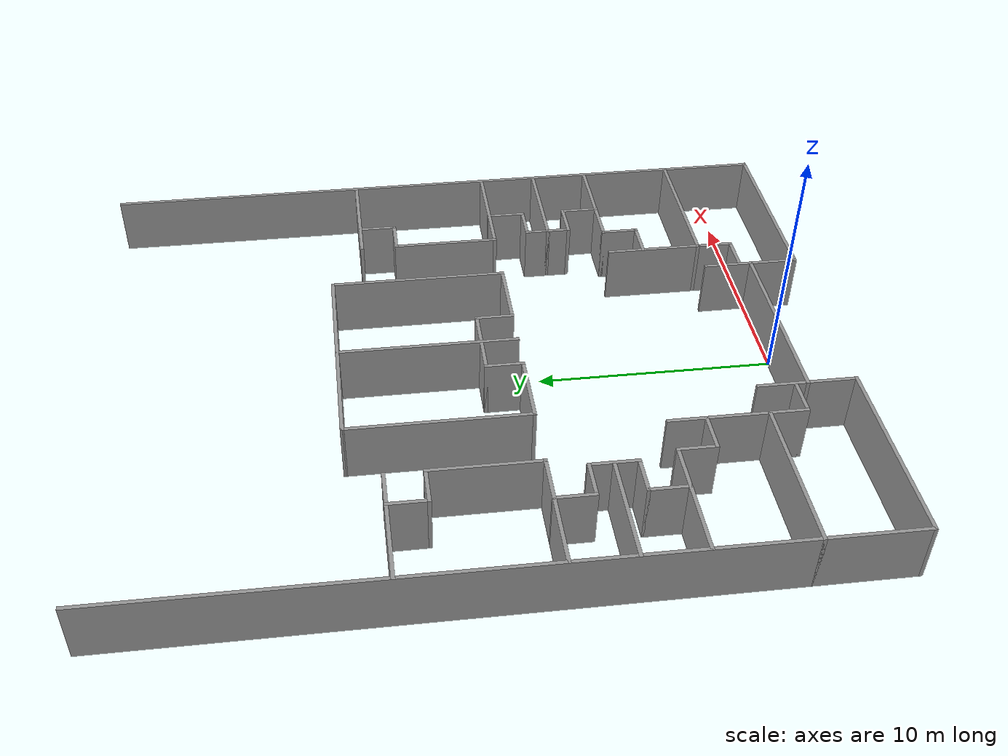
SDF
<sdf version="1.6">
 <model name="hospital__restricted_model">
  <pose>0.015862 19 0 0 -0 0</pose>
  <link name="Wall_0">
   <collision name="Wall_0_Collision">
    <geometry><box><size>4.15 0.15 2.5</size></box></geometry>
    <pose>0 0 1.25 0 -0 0</pose>
   </collision>
   <visual name="Wall_0_Visual">
    <pose>0 0 1.25 0 -0 0</pose>
    <geometry><box><size>4.15 0.15 2.5</size></box></geometry>
    <material>
     <script><uri>file://media/materials/scripts/gazebo.material</uri><name>Gazebo/Grey</name></script>
     <ambient>1 1 1 1</ambient>
    </material>
    <meta><layer>0</layer></meta>
   </visual>
   <pose>-4.01586 -19 0 0 -0 -1.5708</pose>
  </link>
  <link name="Wall_10">
   <collision name="Wall_10_Collision">
    <geometry><box><size>6.6 0.15 2.5</size></box></geometry>
    <pose>0 0 1.25 0 -0 0</pose>
   </collision>
   <visual name="Wall_10_Visual">
    <pose>0 0 1.25 0 -0 0</pose>
    <geometry><box><size>6.6 0.15 2.5</size></box></geometry>
    <material>
     <script><uri>file://media/materials/scripts/gazebo.material</uri><name>Gazebo/Grey</name></script>
     <ambient>1 1 1 1</ambient>
    </material>
    <meta><layer>0</layer></meta>
   </visual>
   <pose>-8.79086 -17 0 0 -0 3.14159</pose>
  </link>
  <link name="Wall_102">
   <collision name="Wall_102_Collision">
    <geometry><box><size>3.15 0.15 2.5</size></box></geometry>
    <pose>0 0 1.25 0 -0 0</pose>
   </collision>
   <visual name="Wall_102_Visual">
    <pose>0 0 1.25 0 -0 0</pose>
    <geometry><box><size>3.15 0.15 2.5</size></box></geometry>
    <material>
     <script><uri>file://media/materials/scripts/gazebo.material</uri><name>Gazebo/Grey</name></script>
     <ambient>1 1 1 1</ambient>
    </material>
    <meta><layer>0</layer></meta>
   </visual>
   <pose>-3.06586 -8 0 0 -0 0</pose>
  </link>
  <link name="Wall_104">
   <collision name="Wall_104_Collision">
    <geometry><box><size>3.15 0.15 2.5</size></box></geometry>
    <pose>0 0 1.25 0 -0 0</pose>
   </collision>
   <visual name="Wall_104_Visual">
    <pose>0 0 1.25 0 -0 0</pose>
    <geometry><box><size>3.15 0.15 2.5</size></box></geometry>
    <material>
     <script><uri>file://media/materials/scripts/gazebo.material</uri><name>Gazebo/Grey</name></script>
     <ambient>1 1 1 1</ambient>
    </material>
    <meta><layer>0</layer></meta>
   </visual>
   <pose>3.03414 -8 0 0 -0 0</pose>
  </link>
  <link name="Wall_106">
   <collision name="Wall_106_Collision">
    <geometry><box><size>7.55 0.15 2.5</size></box></geometry>
    <pose>0 0 1.25 0 -0 0</pose>
   </collision>
   <visual name="Wall_106_Visual">
    <pose>0 0 1.25 0 -0 0</pose>
    <geometry><box><size>7.55 0.15 2.5</size></box></geometry>
    <material>
     <script><uri>file://media/materials/scripts/gazebo.material</uri><name>Gazebo/Grey</name></script>
     <ambient>1 1 1 1</ambient>
    </material>
    <meta><layer>0</layer></meta>
   </visual>
   <pose>-4.56386 -4.3 0 0 -0 1.57134</pose>
  </link>
  <link name="Wall_108">
   <collision name="Wall_108_Collision">
    <geometry><box><size>9.25 0.15 2.5</size></box></geometry>
    <pose>0 0 1.25 0 -0 0</pose>
   </collision>
   <visual name="Wall_108_Visual">
    <pose>0 0 1.25 0 -0 0</pose>
    <geometry><box><size>9.25 0.15 2.5</size></box></geometry>
    <material>
     <script><uri>file://media/materials/scripts/gazebo.material</uri><name>Gazebo/Grey</name></script>
     <ambient>1 1 1 1</ambient>
    </material>
    <meta><layer>0</layer></meta>
   </visual>
   <pose>-0.015862 -0.6 0 0 -0 0</pose>
  </link>
  <link name="Wall_12">
   <collision name="Wall_12_Collision">
    <geometry><box><size>4.15 0.15 2.5</size></box></geometry>
    <pose>0 0 1.25 0 -0 0</pose>
   </collision>
   <visual name="Wall_12_Visual">
    <pose>0 0 1.25 0 -0 0</pose>
    <geometry><box><size>4.15 0.15 2.5</size></box></geometry>
    <material>
     <script><uri>file://media/materials/scripts/gazebo.material</uri><name>Gazebo/Grey</name></script>
     <ambient>1 1 1 1</ambient>
    </material>
    <meta><layer>0</layer></meta>
   </visual>
   <pose>-5.56586 -15 0 0 -0 1.5708</pose>
  </link>
  <link name="Wall_121">
   <collision name="Wall_121_Collision">
    <geometry><box><size>7.55 0.15 2.5</size></box></geometry>
    <pose>0 0 1.25 0 -0 0</pose>
   </collision>
   <visual name="Wall_121_Visual">
    <pose>0 0 1.25 0 -0 0</pose>
    <geometry><box><size>7.55 0.15 2.5</size></box></geometry>
    <material>
     <script><uri>file://media/materials/scripts/gazebo.material</uri><name>Gazebo/Grey</name></script>
     <ambient>1 1 1 1</ambient>
    </material>
    <meta><layer>0</layer></meta>
   </visual>
   <pose>4.53414 -4.3 0 0 -0 -1.5708</pose>
  </link>
  <link name="Wall_123">
   <collision name="Wall_123_Collision">
    <geometry><box><size>7.55 0.15 2.5</size></box></geometry>
    <pose>0 0 1.25 0 -0 0</pose>
   </collision>
   <visual name="Wall_123_Visual">
    <pose>0 0 1.25 0 -0 0</pose>
    <geometry><box><size>7.55 0.15 2.5</size></box></geometry>
    <material>
     <script><uri>file://media/materials/scripts/gazebo.material</uri><name>Gazebo/Grey</name></script>
     <ambient>1 1 1 1</ambient>
    </material>
    <meta><layer>0</layer></meta>
   </visual>
   <pose>-0.015862 -4.3 0 0 -0 -1.5708</pose>
  </link>
  <link name="Wall_125">
   <collision name="Wall_125_Collision">
    <geometry><box><size>1.65 0.15 2.5</size></box></geometry>
    <pose>0 0 1.25 0 -0 0</pose>
   </collision>
   <visual name="Wall_125_Visual">
    <pose>0 0 1.25 0 -0 0</pose>
    <geometry><box><size>1.65 0.15 2.5</size></box></geometry>
    <material>
     <script><uri>file://media/materials/scripts/gazebo.material</uri><name>Gazebo/Grey</name></script>
     <ambient>1 1 1 1</ambient>
    </material>
    <meta><layer>0</layer></meta>
   </visual>
   <pose>-5.56586 -17.75 0 0 -0 -1.5708</pose>
  </link>
  <link name="Wall_127">
   <collision name="Wall_127_Collision">
    <geometry><box><size>1.7 0.15 2.5</size></box></geometry>
    <pose>0 0 1.25 0 -0 0</pose>
   </collision>
   <visual name="Wall_127_Visual">
    <pose>0 0 1.25 0 -0 0</pose>
    <geometry><box><size>1.7 0.15 2.5</size></box></geometry>
    <material>
     <script><uri>file://media/materials/scripts/gazebo.material</uri><name>Gazebo/Grey</name></script>
     <ambient>1 1 1 1</ambient>
    </material>
    <meta><layer>0</layer></meta>
   </visual>
   <pose>-4.79086 -18.5 0 0 -0 0</pose>
  </link>
  <link name="Wall_129">
   <collision name="Wall_129_Collision">
    <geometry><box><size>1.65 0.15 2.5</size></box></geometry>
    <pose>0 0 1.25 0 -0 0</pose>
   </collision>
   <visual name="Wall_129_Visual">
    <pose>0 0 1.25 0 -0 0</pose>
    <geometry><box><size>1.65 0.15 2.5</size></box></geometry>
    <material>
     <script><uri>file://media/materials/scripts/gazebo.material</uri><name>Gazebo/Grey</name></script>
     <ambient>1 1 1 1</ambient>
    </material>
    <meta><layer>0</layer></meta>
   </visual>
   <pose>5.53414 -17.75 0 0 -0 -1.5708</pose>
  </link>
  <link name="Wall_131">
   <collision name="Wall_131_Collision">
    <geometry><box><size>1.7 0.15 2.5</size></box></geometry>
    <pose>0 0 1.25 0 -0 0</pose>
   </collision>
   <visual name="Wall_131_Visual">
    <pose>0 0 1.25 0 -0 0</pose>
    <geometry><box><size>1.7 0.15 2.5</size></box></geometry>
    <material>
     <script><uri>file://media/materials/scripts/gazebo.material</uri><name>Gazebo/Grey</name></script>
     <ambient>1 1 1 1</ambient>
    </material>
    <meta><layer>0</layer></meta>
   </visual>
   <pose>4.75914 -18.5 0 0 -0 3.14159</pose>
  </link>
  <link name="Wall_133">
   <collision name="Wall_133_Collision">
    <geometry><box><size>1.65 0.15 2.5</size></box></geometry>
    <pose>0 0 1.25 0 -0 0</pose>
   </collision>
   <visual name="Wall_133_Visual">
    <pose>0 0 1.25 0 -0 0</pose>
    <geometry><box><size>1.65 0.15 2.5</size></box></geometry>
    <material>
     <script><uri>file://media/materials/scripts/gazebo.material</uri><name>Gazebo/Grey</name></script>
     <ambient>1 1 1 1</ambient>
    </material>
    <meta><layer>0</layer></meta>
   </visual>
   <pose>-7.11586 -13.75 0 0 -0 -1.5708</pose>
  </link>
  <link name="Wall_135">
   <collision name="Wall_135_Collision">
    <geometry><box><size>1.7 0.15 2.5</size></box></geometry>
    <pose>0 0 1.25 0 -0 0</pose>
   </collision>
   <visual name="Wall_135_Visual">
    <pose>0 0 1.25 0 -0 0</pose>
    <geometry><box><size>1.7 0.15 2.5</size></box></geometry>
    <material>
     <script><uri>file://media/materials/scripts/gazebo.material</uri><name>Gazebo/Grey</name></script>
     <ambient>1 1 1 1</ambient>
    </material>
    <meta><layer>0</layer></meta>
   </visual>
   <pose>-6.34086 -14.5 0 0 -0 0</pose>
  </link>
  <link name="Wall_137">
   <collision name="Wall_137_Collision">
    <geometry><box><size>1.65 0.15 2.5</size></box></geometry>
    <pose>0 0 1.25 0 -0 0</pose>
   </collision>
   <visual name="Wall_137_Visual">
    <pose>0 0 1.25 0 -0 0</pose>
    <geometry><box><size>1.65 0.15 2.5</size></box></geometry>
    <material>
     <script><uri>file://media/materials/scripts/gazebo.material</uri><name>Gazebo/Grey</name></script>
     <ambient>1 1 1 1</ambient>
    </material>
    <meta><layer>0</layer></meta>
   </visual>
   <pose>7.08414 -13.75 0 0 -0 1.5708</pose>
  </link>
  <link name="Wall_139">
   <collision name="Wall_139_Collision">
    <geometry><box><size>1.7 0.15 2.5</size></box></geometry>
    <pose>0 0 1.25 0 -0 0</pose>
   </collision>
   <visual name="Wall_139_Visual">
    <pose>0 0 1.25 0 -0 0</pose>
    <geometry><box><size>1.7 0.15 2.5</size></box></geometry>
    <material>
     <script><uri>file://media/materials/scripts/gazebo.material</uri><name>Gazebo/Grey</name></script>
     <ambient>1 1 1 1</ambient>
    </material>
    <meta><layer>0</layer></meta>
   </visual>
   <pose>6.30914 -14.5 0 0 -0 3.14159</pose>
  </link>
  <link name="Wall_14">
   <collision name="Wall_14_Collision">
    <geometry><box><size>5.05 0.15 2.5</size></box></geometry>
    <pose>0 0 1.25 0 -0 0</pose>
   </collision>
   <visual name="Wall_14_Visual">
    <pose>0 0 1.25 0 -0 0</pose>
    <geometry><box><size>5.05 0.15 2.5</size></box></geometry>
    <material>
     <script><uri>file://media/materials/scripts/gazebo.material</uri><name>Gazebo/Grey</name></script>
     <ambient>1 1 1 1</ambient>
    </material>
    <meta><layer>0</layer></meta>
   </visual>
   <pose>-9.56586 -13 0 0 -0 3.14159</pose>
  </link>
  <link name="Wall_141">
   <collision name="Wall_141_Collision">
    <geometry><box><size>1.65 0.15 2.5</size></box></geometry>
    <pose>0 0 1.25 0 -0 0</pose>
   </collision>
   <visual name="Wall_141_Visual">
    <pose>0 0 1.25 0 -0 0</pose>
    <geometry><box><size>1.65 0.15 2.5</size></box></geometry>
    <material>
     <script><uri>file://media/materials/scripts/gazebo.material</uri><name>Gazebo/Grey</name></script>
     <ambient>1 1 1 1</ambient>
    </material>
    <meta><layer>0</layer></meta>
   </visual>
   <pose>-8.26586 -11.45 0 0 -0 3.14159</pose>
  </link>
  <link name="Wall_143">
   <collision name="Wall_143_Collision">
    <geometry><box><size>1.7 0.15 2.5</size></box></geometry>
    <pose>0 0 1.25 0 -0 0</pose>
   </collision>
   <visual name="Wall_143_Visual">
    <pose>0 0 1.25 0 -0 0</pose>
    <geometry><box><size>1.7 0.15 2.5</size></box></geometry>
    <material>
     <script><uri>file://media/materials/scripts/gazebo.material</uri><name>Gazebo/Grey</name></script>
     <ambient>1 1 1 1</ambient>
    </material>
    <meta><layer>0</layer></meta>
   </visual>
   <pose>-9.01586 -12.225 0 0 -0 -1.5708</pose>
  </link>
  <link name="Wall_145">
   <collision name="Wall_145_Collision">
    <geometry><box><size>1.65 0.15 2.5</size></box></geometry>
    <pose>0 0 1.25 0 -0 0</pose>
   </collision>
   <visual name="Wall_145_Visual">
    <pose>0 0 1.25 0 -0 0</pose>
    <geometry><box><size>1.65 0.15 2.5</size></box></geometry>
    <material>
     <script><uri>file://media/materials/scripts/gazebo.material</uri><name>Gazebo/Grey</name></script>
     <ambient>1 1 1 1</ambient>
    </material>
    <meta><layer>0</layer></meta>
   </visual>
   <pose>-8.26586 -9.55 0 0 -0 3.14159</pose>
  </link>
  <link name="Wall_147">
   <collision name="Wall_147_Collision">
    <geometry><box><size>1.7 0.15 2.5</size></box></geometry>
    <pose>0 0 1.25 0 -0 0</pose>
   </collision>
   <visual name="Wall_147_Visual">
    <pose>0 0 1.25 0 -0 0</pose>
    <geometry><box><size>1.7 0.15 2.5</size></box></geometry>
    <material>
     <script><uri>file://media/materials/scripts/gazebo.material</uri><name>Gazebo/Grey</name></script>
     <ambient>1 1 1 1</ambient>
    </material>
    <meta><layer>0</layer></meta>
   </visual>
   <pose>-9.01586 -8.775 0 0 -0 -1.5708</pose>
  </link>
  <link name="Wall_149">
   <collision name="Wall_149_Collision">
    <geometry><box><size>1.65 0.15 2.5</size></box></geometry>
    <pose>0 0 1.25 0 -0 0</pose>
   </collision>
   <visual name="Wall_149_Visual">
    <pose>0 0 1.25 0 -0 0</pose>
    <geometry><box><size>1.65 0.15 2.5</size></box></geometry>
    <material>
     <script><uri>file://media/materials/scripts/gazebo.material</uri><name>Gazebo/Grey</name></script>
     <ambient>1 1 1 1</ambient>
    </material>
    <meta><layer>0</layer></meta>
   </visual>
   <pose>-7.86586 -3.55 0 0 -0 0</pose>
  </link>
  <link name="Wall_151">
   <collision name="Wall_151_Collision">
    <geometry><box><size>1.7 0.15 2.5</size></box></geometry>
    <pose>0 0 1.25 0 -0 0</pose>
   </collision>
   <visual name="Wall_151_Visual">
    <pose>0 0 1.25 0 -0 0</pose>
    <geometry><box><size>1.7 0.15 2.5</size></box></geometry>
    <material>
     <script><uri>file://media/materials/scripts/gazebo.material</uri><name>Gazebo/Grey</name></script>
     <ambient>1 1 1 1</ambient>
    </material>
    <meta><layer>0</layer></meta>
   </visual>
   <pose>-8.61586 -2.775 0 0 -0 1.5708</pose>
  </link>
  <link name="Wall_17">
   <collision name="Wall_17_Collision">
    <geometry><box><size>2.05 0.15 2.5</size></box></geometry>
    <pose>0 0 1.25 0 -0 0</pose>
   </collision>
   <visual name="Wall_17_Visual">
    <pose>0 0 1.25 0 -0 0</pose>
    <geometry><box><size>2.05 0.15 2.5</size></box></geometry>
    <material>
     <script><uri>file://media/materials/scripts/gazebo.material</uri><name>Gazebo/Grey</name></script>
     <ambient>1 1 1 1</ambient>
    </material>
    <meta><layer>0</layer></meta>
   </visual>
   <pose>-7.51586 -10.5 0 0 -0 1.5708</pose>
  </link>
  <link name="Wall_19">
   <collision name="Wall_19_Collision">
    <geometry><box><size>4.65 0.15 2.5</size></box></geometry>
    <pose>0 0 1.25 0 -0 0</pose>
   </collision>
   <visual name="Wall_19_Visual">
    <pose>0 0 1.25 0 -0 0</pose>
    <geometry><box><size>4.65 0.15 2.5</size></box></geometry>
    <material>
     <script><uri>file://media/materials/scripts/gazebo.material</uri><name>Gazebo/Grey</name></script>
     <ambient>1 1 1 1</ambient>
    </material>
    <meta><layer>0</layer></meta>
   </visual>
   <pose>-9.76586 -10.5 0 0 -0 3.14159</pose>
  </link>
  <link name="Wall_2">
   <collision name="Wall_2_Collision">
    <geometry><box><size>8.15 0.15 2.5</size></box></geometry>
    <pose>0 0 1.25 0 -0 0</pose>
   </collision>
   <visual name="Wall_2_Visual">
    <pose>0 0 1.25 0 -0 0</pose>
    <geometry><box><size>8.15 0.15 2.5</size></box></geometry>
    <material>
     <script><uri>file://media/materials/scripts/gazebo.material</uri><name>Gazebo/Grey</name></script>
     <ambient>1 1 1 1</ambient>
    </material>
    <meta><layer>0</layer></meta>
   </visual>
   <pose>-0.015862 -19 0 0 -0 0</pose>
  </link>
  <link name="Wall_203">
   <collision name="Wall_203_Collision">
    <geometry><box><size>1.7 0.15 2.5</size></box></geometry>
    <pose>0 0 1.25 0 -0 0</pose>
   </collision>
   <visual name="Wall_203_Visual">
    <pose>0 0 1.25 0 -0 0</pose>
    <geometry><box><size>1.7 0.15 2.5</size></box></geometry>
    <material>
     <script><uri>file://media/materials/scripts/gazebo.material</uri><name>Gazebo/Grey</name></script>
     <ambient>1 1 1 1</ambient>
    </material>
    <meta><layer>0</layer></meta>
   </visual>
   <pose>8.58414 -2.775 0 0 -0 1.5708</pose>
  </link>
  <link name="Wall_205">
   <collision name="Wall_205_Collision">
    <geometry><box><size>1.65 0.15 2.5</size></box></geometry>
    <pose>0 0 1.25 0 -0 0</pose>
   </collision>
   <visual name="Wall_205_Visual">
    <pose>0 0 1.25 0 -0 0</pose>
    <geometry><box><size>1.65 0.15 2.5</size></box></geometry>
    <material>
     <script><uri>file://media/materials/scripts/gazebo.material</uri><name>Gazebo/Grey</name></script>
     <ambient>1 1 1 1</ambient>
    </material>
    <meta><layer>0</layer></meta>
   </visual>
   <pose>7.83414 -3.55 0 0 -0 3.14159</pose>
  </link>
  <link name="Wall_207">
   <collision name="Wall_207_Collision">
    <geometry><box><size>1.7 0.15 2.5</size></box></geometry>
    <pose>0 0 1.25 0 -0 0</pose>
   </collision>
   <visual name="Wall_207_Visual">
    <pose>0 0 1.25 0 -0 0</pose>
    <geometry><box><size>1.7 0.15 2.5</size></box></geometry>
    <material>
     <script><uri>file://media/materials/scripts/gazebo.material</uri><name>Gazebo/Grey</name></script>
     <ambient>1 1 1 1</ambient>
    </material>
    <meta><layer>0</layer></meta>
   </visual>
   <pose>8.98414 -12.225 0 0 -0 1.5708</pose>
  </link>
  <link name="Wall_209">
   <collision name="Wall_209_Collision">
    <geometry><box><size>1.65 0.15 2.5</size></box></geometry>
    <pose>0 0 1.25 0 -0 0</pose>
   </collision>
   <visual name="Wall_209_Visual">
    <pose>0 0 1.25 0 -0 0</pose>
    <geometry><box><size>1.65 0.15 2.5</size></box></geometry>
    <material>
     <script><uri>file://media/materials/scripts/gazebo.material</uri><name>Gazebo/Grey</name></script>
     <ambient>1 1 1 1</ambient>
    </material>
    <meta><layer>0</layer></meta>
   </visual>
   <pose>8.23414 -11.45 0 0 -0 3.14159</pose>
  </link>
  <link name="Wall_21">
   <collision name="Wall_21_Collision">
    <geometry><box><size>5.05 0.15 2.5</size></box></geometry>
    <pose>0 0 1.25 0 -0 0</pose>
   </collision>
   <visual name="Wall_21_Visual">
    <pose>0 0 1.25 0 -0 0</pose>
    <geometry><box><size>5.05 0.15 2.5</size></box></geometry>
    <material>
     <script><uri>file://media/materials/scripts/gazebo.material</uri><name>Gazebo/Grey</name></script>
     <ambient>1 1 1 1</ambient>
    </material>
    <meta><layer>0</layer></meta>
   </visual>
   <pose>-9.56586 -8 0 0 -0 3.14159</pose>
  </link>
  <link name="Wall_211">
   <collision name="Wall_211_Collision">
    <geometry><box><size>1.65 0.15 2.5</size></box></geometry>
    <pose>0 0 1.25 0 -0 0</pose>
   </collision>
   <visual name="Wall_211_Visual">
    <pose>0 0 1.25 0 -0 0</pose>
    <geometry><box><size>1.65 0.15 2.5</size></box></geometry>
    <material>
     <script><uri>file://media/materials/scripts/gazebo.material</uri><name>Gazebo/Grey</name></script>
     <ambient>1 1 1 1</ambient>
    </material>
    <meta><layer>0</layer></meta>
   </visual>
   <pose>8.23414 -9.55 0 0 -0 3.14159</pose>
  </link>
  <link name="Wall_213">
   <collision name="Wall_213_Collision">
    <geometry><box><size>1.7 0.15 2.5</size></box></geometry>
    <pose>0 0 1.25 0 -0 0</pose>
   </collision>
   <visual name="Wall_213_Visual">
    <pose>0 0 1.25 0 -0 0</pose>
    <geometry><box><size>1.7 0.15 2.5</size></box></geometry>
    <material>
     <script><uri>file://media/materials/scripts/gazebo.material</uri><name>Gazebo/Grey</name></script>
     <ambient>1 1 1 1</ambient>
    </material>
    <meta><layer>0</layer></meta>
   </visual>
   <pose>8.98414 -8.775 0 0 -0 -1.5708</pose>
  </link>
  <link name="Wall_215">
   <collision name="Wall_215_Collision">
    <geometry><box><size>3.25 0.15 2.5</size></box></geometry>
    <pose>0 0 1.25 0 -0 0</pose>
   </collision>
   <visual name="Wall_215_Visual">
    <pose>0 0 1.25 0 -0 0</pose>
    <geometry><box><size>3.25 0.15 2.5</size></box></geometry>
    <material>
     <script><uri>file://media/materials/scripts/gazebo.material</uri><name>Gazebo/Grey</name></script>
     <ambient>1 1 1 1</ambient>
    </material>
    <meta><layer>0</layer></meta>
   </visual>
   <pose>-0.015862 -6.5 0 0 -0 0</pose>
  </link>
  <link name="Wall_217">
   <collision name="Wall_217_Collision">
    <geometry><box><size>1.65 0.15 2.5</size></box></geometry>
    <pose>0 0 1.25 0 -0 0</pose>
   </collision>
   <visual name="Wall_217_Visual">
    <pose>0 0 1.25 0 -0 0</pose>
    <geometry><box><size>1.65 0.15 2.5</size></box></geometry>
    <material>
     <script><uri>file://media/materials/scripts/gazebo.material</uri><name>Gazebo/Grey</name></script>
     <ambient>1 1 1 1</ambient>
    </material>
    <meta><layer>0</layer></meta>
   </visual>
   <pose>-1.56586 -7.25 0 0 -0 1.5708</pose>
  </link>
  <link name="Wall_219">
   <collision name="Wall_219_Collision">
    <geometry><box><size>1.65 0.15 2.5</size></box></geometry>
    <pose>0 0 1.25 0 -0 0</pose>
   </collision>
   <visual name="Wall_219_Visual">
    <pose>0 0 1.25 0 -0 0</pose>
    <geometry><box><size>1.65 0.15 2.5</size></box></geometry>
    <material>
     <script><uri>file://media/materials/scripts/gazebo.material</uri><name>Gazebo/Grey</name></script>
     <ambient>1 1 1 1</ambient>
    </material>
    <meta><layer>0</layer></meta>
   </visual>
   <pose>1.53414 -7.25 0 0 -0 -1.5708</pose>
  </link>
  <link name="Wall_23">
   <collision name="Wall_23_Collision">
    <geometry><box><size>4.6 0.15 2.5</size></box></geometry>
    <pose>0 0 1.25 0 -0 0</pose>
   </collision>
   <visual name="Wall_23_Visual">
    <pose>0 0 1.25 0 -0 0</pose>
    <geometry><box><size>4.6 0.15 2.5</size></box></geometry>
    <material>
     <script><uri>file://media/materials/scripts/gazebo.material</uri><name>Gazebo/Grey</name></script>
     <ambient>1 1 1 1</ambient>
    </material>
    <meta><layer>0</layer></meta>
   </visual>
   <pose>-7.11586 -5.775 0 0 -0 1.5708</pose>
  </link>
  <link name="Wall_25">
   <collision name="Wall_25_Collision">
    <geometry><box><size>5.05 0.15 2.5</size></box></geometry>
    <pose>0 0 1.25 0 -0 0</pose>
   </collision>
   <visual name="Wall_25_Visual">
    <pose>0 0 1.25 0 -0 0</pose>
    <geometry><box><size>5.05 0.15 2.5</size></box></geometry>
    <material>
     <script><uri>file://media/materials/scripts/gazebo.material</uri><name>Gazebo/Grey</name></script>
     <ambient>1 1 1 1</ambient>
    </material>
    <meta><layer>0</layer></meta>
   </visual>
   <pose>-9.56586 -2 0 0 -0 3.14159</pose>
  </link>
  <link name="Wall_4">
   <collision name="Wall_4_Collision">
    <geometry><box><size>4.15 0.15 2.5</size></box></geometry>
    <pose>0 0 1.25 0 -0 0</pose>
   </collision>
   <visual name="Wall_4_Visual">
    <pose>0 0 1.25 0 -0 0</pose>
    <geometry><box><size>4.15 0.15 2.5</size></box></geometry>
    <material>
     <script><uri>file://media/materials/scripts/gazebo.material</uri><name>Gazebo/Grey</name></script>
     <ambient>1 1 1 1</ambient>
    </material>
    <meta><layer>0</layer></meta>
   </visual>
   <pose>3.98414 -19 0 0 -0 1.5708</pose>
  </link>
  <link name="Wall_58">
   <collision name="Wall_58_Collision">
    <geometry><box><size>8.15 0.15 2.5</size></box></geometry>
    <pose>0 0 1.25 0 -0 0</pose>
   </collision>
   <visual name="Wall_58_Visual">
    <pose>0 0 1.25 0 -0 0</pose>
    <geometry><box><size>8.15 0.15 2.5</size></box></geometry>
    <material>
     <script><uri>file://media/materials/scripts/gazebo.material</uri><name>Gazebo/Grey</name></script>
     <ambient>1 1 1 1</ambient>
    </material>
    <meta><layer>0</layer></meta>
   </visual>
   <pose>8.01586 -21 0 0 -0 0</pose>
  </link>
  <link name="Wall_6">
   <collision name="Wall_6_Collision">
    <geometry><box><size>8.15 0.15 2.5</size></box></geometry>
    <pose>0 0 1.25 0 -0 0</pose>
   </collision>
   <visual name="Wall_6_Visual">
    <pose>0 0 1.25 0 -0 0</pose>
    <geometry><box><size>8.15 0.15 2.5</size></box></geometry>
    <material>
     <script><uri>file://media/materials/scripts/gazebo.material</uri><name>Gazebo/Grey</name></script>
     <ambient>1 1 1 1</ambient>
    </material>
    <meta><layer>0</layer></meta>
   </visual>
   <pose>-8.01586 -21 0 0 -0 3.14159</pose>
  </link>
  <link name="Wall_60">
   <collision name="Wall_60_Collision">
    <geometry><box><size>30.15 0.15 2.5</size></box></geometry>
    <pose>0 0 1.25 0 -0 0</pose>
   </collision>
   <visual name="Wall_60_Visual">
    <pose>0 0 1.25 0 -0 0</pose>
    <geometry><box><size>30.15 0.15 2.5</size></box></geometry>
    <material>
     <script><uri>file://media/materials/scripts/gazebo.material</uri><name>Gazebo/Grey</name></script>
     <ambient>1 1 1 1</ambient>
    </material>
    <meta><layer>0</layer></meta>
   </visual>
   <pose>11.9841 -6 0 0 -0 1.5708</pose>
  </link>
  <link name="Wall_64">
   <collision name="Wall_64_Collision">
    <geometry><box><size>4.15 0.15 2.5</size></box></geometry>
    <pose>0 0 1.25 0 -0 0</pose>
   </collision>
   <visual name="Wall_64_Visual">
    <pose>0 0 1.25 0 -0 0</pose>
    <geometry><box><size>4.15 0.15 2.5</size></box></geometry>
    <material>
     <script><uri>file://media/materials/scripts/gazebo.material</uri><name>Gazebo/Grey</name></script>
     <ambient>1 1 1 1</ambient>
    </material>
    <meta><layer>0</layer></meta>
   </visual>
   <pose>5.53414 -15 0 0 -0 1.5708</pose>
  </link>
  <link name="Wall_66">
   <collision name="Wall_66_Collision">
    <geometry><box><size>6.6 0.15 2.5</size></box></geometry>
    <pose>0 0 1.25 0 -0 0</pose>
   </collision>
   <visual name="Wall_66_Visual">
    <pose>0 0 1.25 0 -0 0</pose>
    <geometry><box><size>6.6 0.15 2.5</size></box></geometry>
    <material>
     <script><uri>file://media/materials/scripts/gazebo.material</uri><name>Gazebo/Grey</name></script>
     <ambient>1 1 1 1</ambient>
    </material>
    <meta><layer>0</layer></meta>
   </visual>
   <pose>8.75914 -17 0 0 -0 0</pose>
  </link>
  <link name="Wall_68">
   <collision name="Wall_68_Collision">
    <geometry><box><size>5.05 0.15 2.5</size></box></geometry>
    <pose>0 0 1.25 0 -0 0</pose>
   </collision>
   <visual name="Wall_68_Visual">
    <pose>0 0 1.25 0 -0 0</pose>
    <geometry><box><size>5.05 0.15 2.5</size></box></geometry>
    <material>
     <script><uri>file://media/materials/scripts/gazebo.material</uri><name>Gazebo/Grey</name></script>
     <ambient>1 1 1 1</ambient>
    </material>
    <meta><layer>0</layer></meta>
   </visual>
   <pose>9.53414 -13 0 0 -0 0</pose>
  </link>
  <link name="Wall_70">
   <collision name="Wall_70_Collision">
    <geometry><box><size>2.05 0.15 2.5</size></box></geometry>
    <pose>0 0 1.25 0 -0 0</pose>
   </collision>
   <visual name="Wall_70_Visual">
    <pose>0 0 1.25 0 -0 0</pose>
    <geometry><box><size>2.05 0.15 2.5</size></box></geometry>
    <material>
     <script><uri>file://media/materials/scripts/gazebo.material</uri><name>Gazebo/Grey</name></script>
     <ambient>1 1 1 1</ambient>
    </material>
    <meta><layer>0</layer></meta>
   </visual>
   <pose>7.48414 -10.5 0 0 -0 1.5708</pose>
  </link>
  <link name="Wall_72">
   <collision name="Wall_72_Collision">
    <geometry><box><size>4.65 0.15 2.5</size></box></geometry>
    <pose>0 0 1.25 0 -0 0</pose>
   </collision>
   <visual name="Wall_72_Visual">
    <pose>0 0 1.25 0 -0 0</pose>
    <geometry><box><size>4.65 0.15 2.5</size></box></geometry>
    <material>
     <script><uri>file://media/materials/scripts/gazebo.material</uri><name>Gazebo/Grey</name></script>
     <ambient>1 1 1 1</ambient>
    </material>
    <meta><layer>0</layer></meta>
   </visual>
   <pose>9.73414 -10.5 0 0 -0 0</pose>
  </link>
  <link name="Wall_74">
   <collision name="Wall_74_Collision">
    <geometry><box><size>4.6 0.15 2.5</size></box></geometry>
    <pose>0 0 1.25 0 -0 0</pose>
   </collision>
   <visual name="Wall_74_Visual">
    <pose>0 0 1.25 0 -0 0</pose>
    <geometry><box><size>4.6 0.15 2.5</size></box></geometry>
    <material>
     <script><uri>file://media/materials/scripts/gazebo.material</uri><name>Gazebo/Grey</name></script>
     <ambient>1 1 1 1</ambient>
    </material>
    <meta><layer>0</layer></meta>
   </visual>
   <pose>7.08414 -5.775 0 0 -0 1.5708</pose>
  </link>
  <link name="Wall_76">
   <collision name="Wall_76_Collision">
    <geometry><box><size>5.05 0.15 2.5</size></box></geometry>
    <pose>0 0 1.25 0 -0 0</pose>
   </collision>
   <visual name="Wall_76_Visual">
    <pose>0 0 1.25 0 -0 0</pose>
    <geometry><box><size>5.05 0.15 2.5</size></box></geometry>
    <material>
     <script><uri>file://media/materials/scripts/gazebo.material</uri><name>Gazebo/Grey</name></script>
     <ambient>1 1 1 1</ambient>
    </material>
    <meta><layer>0</layer></meta>
   </visual>
   <pose>9.53414 -8 0 0 -0 0</pose>
  </link>
  <link name="Wall_8">
   <collision name="Wall_8_Collision">
    <geometry><box><size>30.15 0.15 2.5</size></box></geometry>
    <pose>0 0 1.25 0 -0 0</pose>
   </collision>
   <visual name="Wall_8_Visual">
    <pose>0 0 1.25 0 -0 0</pose>
    <geometry><box><size>30.15 0.15 2.5</size></box></geometry>
    <material>
     <script><uri>file://media/materials/scripts/gazebo.material</uri><name>Gazebo/Grey</name></script>
     <ambient>1 1 1 1</ambient>
    </material>
    <meta><layer>0</layer></meta>
   </visual>
   <pose>-12.0159 -6 0 0 -0 1.5708</pose>
  </link>
  <link name="Wall_80">
   <collision name="Wall_80_Collision">
    <geometry><box><size>5.05 0.15 2.5</size></box></geometry>
    <pose>0 0 1.25 0 -0 0</pose>
   </collision>
   <visual name="Wall_80_Visual">
    <pose>0 0 1.25 0 -0 0</pose>
    <geometry><box><size>5.05 0.15 2.5</size></box></geometry>
    <material>
     <script><uri>file://media/materials/scripts/gazebo.material</uri><name>Gazebo/Grey</name></script>
     <ambient>1 1 1 1</ambient>
    </material>
    <meta><layer>0</layer></meta>
   </visual>
   <pose>9.53414 -2 0 0 -0 0</pose>
  </link>
  <static>1</static>
 </model>
</sdf>
